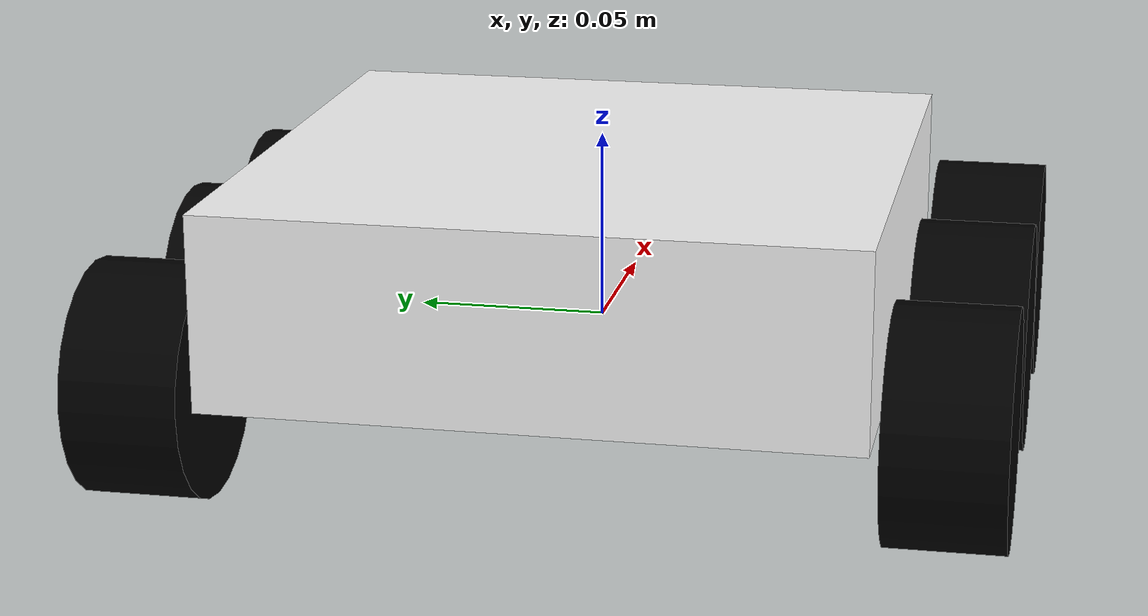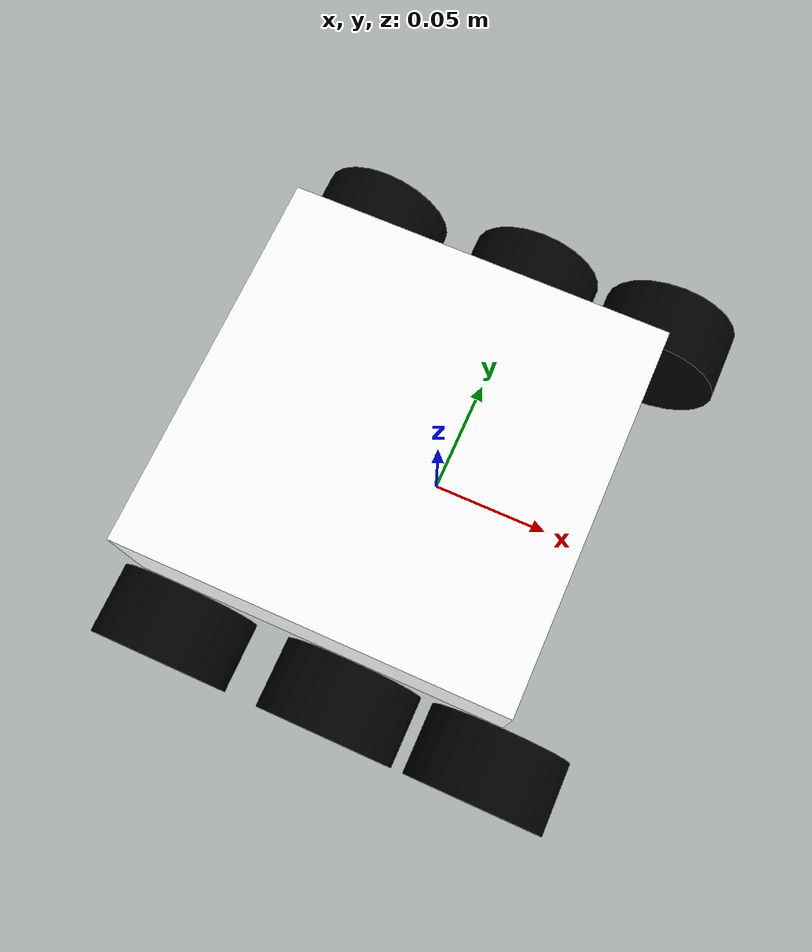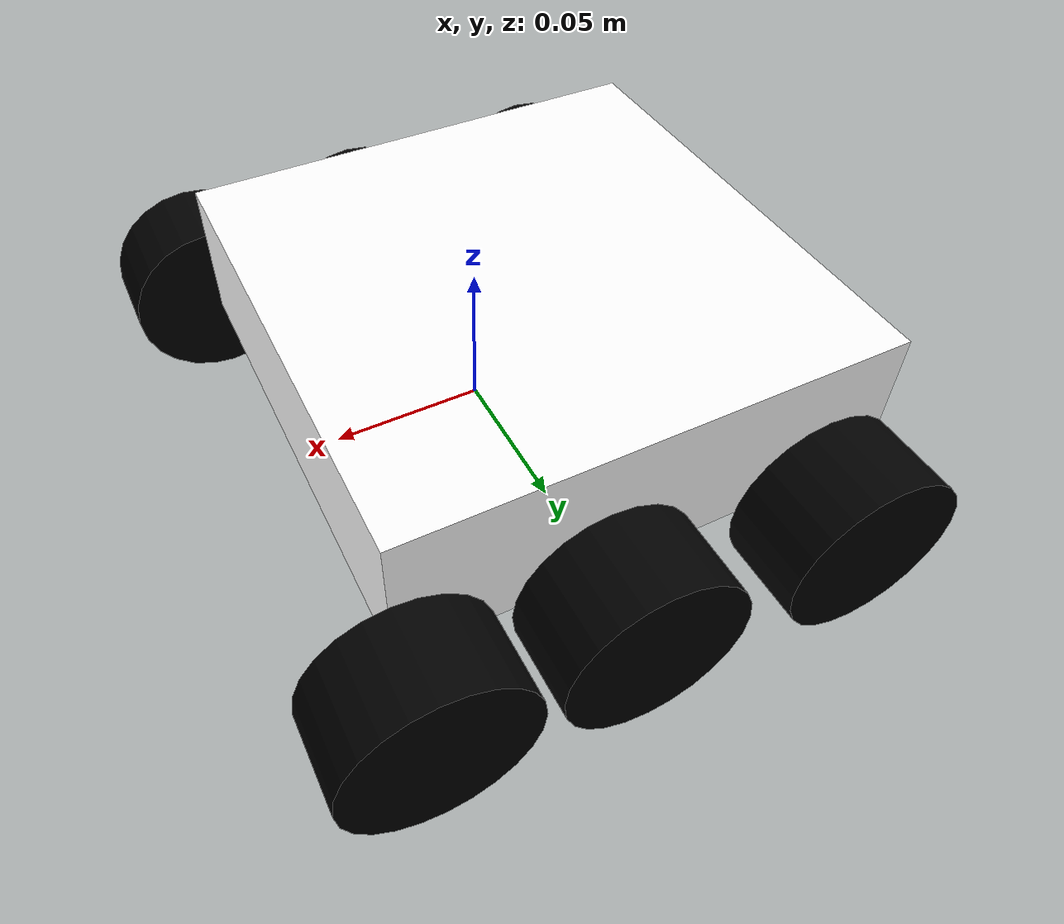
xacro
<?xml version="1.0"?>
<robot xmlns:xacro="http://www.ros.org/wiki/xacro"  >

    <xacro:include filename="inertial_macros.xacro"/>

<!--MATERIALS-->

    <material name="white">
        <color rgba="1 1 1 1" />
    </material>

    <material name="orange">
        <color rgba="1 0.3 0.1 1" />
    </material>

    <material name="blue">
        <color rgba="0.2 0.2 1 1" />
    </material>

    <material name="black">
        <color rgba="0 0 0 1" />
    </material>

<!--BASE LINK-->

    <link name="base_link">
    </link>

<!--CHASSIS LINK-->

    <joint name="chassis_joint" type="fixed">
        <parent link="base_link"/>
        <child link="chassis"/>
        <origin xyz="-0.1 0 0"/>
    </joint>

    <link name="chassis">
        <visual>
            <origin xyz="0.0825 0 0.025" rpy="0 0 0"/>
            <geometry>
                <box size="0.165 0.165 0.05"/>
            </geometry>
            <material name="white"/>
        </visual>
        <collision>
            <origin xyz="0.0825 0 0.025" rpy="0 0 0"/>
            <geometry>
                <box size="0.165 0.165 0.05"/>
            </geometry>
            <material name="white"/>
        </collision>
        <xacro:inertial_box mass="0.5" x="0.3" y="0.3" z="0.15">
            <origin xyz="0.0825 0 0.025" rpy="0 0 0"/>
        </xacro:inertial_box>
    </link>

    <gazebo reference="chassis">
        <material>Gazebo/White</material>
    </gazebo>

<!--BACK LEFT WHEEL LINK-->

    <joint name ="back_left_wheel_joint" type="continuous">
        <parent link="base_link"/>
        <child link="back_left_wheel"/>
        <origin xyz="0.065 0.100 0" rpy="-${pi/2} 0 0"/>
        <axis xyz="0 0 1"/>
    </joint>

    <link name="back_left_wheel">
        <visual>
            <geometry>
                <cylinder length="0.03" radius="0.03"/>
            </geometry>
            <material name="black"/>
        </visual>
        <collision>
            <geometry>
                <cylinder length="0.030" radius="0.030"/>
            </geometry>
            <material name="black"/>
        </collision>
        <xacro:inertial_cylinder mass="0.1" length="0.03" radius="0.03">
            <origin xyz="0 0 0" rpy="0 0 0"/>
        </xacro:inertial_cylinder>
    </link>

    <gazebo reference="back_left_wheel">
        <material>Gazebo/Black</material>
    </gazebo>

<!--BACK RIGHT WHEEL LINK-->

    <joint name ="back_right_wheel_joint" type="continuous">
        <parent link="base_link"/>
        <child link="back_right_wheel"/>
        <origin xyz="0.065 -0.100 0" rpy="${pi/2} 0 0"/>
        <axis xyz="0 0 -1"/>
    </joint>

    <link name="back_right_wheel">
        <visual>
            <geometry>
                <cylinder length="0.030" radius="0.030"/>
            </geometry>
            <material name ="black"/>
        </visual>
        <collision>
            <geometry>
                <cylinder length="0.030" radius="0.030"/>
            </geometry>
            <material name ="black"/>
        </collision>
        <xacro:inertial_cylinder mass="0.1" length="0.03" radius="0.03">
            <origin xyz="0 0 0" rpy="0 0 0"/>
        </xacro:inertial_cylinder>
    </link>

    <gazebo reference="back_right_wheel">
        <material>Gazebo/Black</material>
    </gazebo>

<!--FRONT LEFT WHEEL LINK-->

    <joint name ="front_left_wheel_joint" type="fixed">
        <parent link="base_link"/>
        <child link="front_left_wheel"/>
        <origin xyz="-0.075 0.100 0" rpy="-${pi/2} 0 0"/>
        <axis xyz="0 0 1"/>
    </joint>

    <link name="front_left_wheel">
        <visual>
            <geometry>
                <cylinder length="0.03" radius="0.03"/>
            </geometry>
            <material name="black"/>
        </visual>
        <collision>
            <geometry>
                <cylinder length="0.030" radius="0.030"/>
            </geometry>
            <material name="black"/>
        </collision>
        <xacro:inertial_cylinder mass="0.1" length="0.03" radius="0.03">
            <origin xyz="0 0 0" rpy="0 0 0"/>
        </xacro:inertial_cylinder>
    </link>

    <gazebo reference="front_left_wheel">
        <material>Gazebo/Black</material>
        <mu1 value="0.001"/>
        <mu2 value="0.001"/>
    </gazebo>

<!--FRONT RIGHT WHEEL LINK-->

    <joint name ="front_right_wheel_joint" type="fixed">
        <parent link="base_link"/>
        <child link="front_right_wheel"/>
        <origin xyz="-0.075 -0.100 0" rpy="${pi/2} 0 0"/>
        <axis xyz="0 0 -1"/>
    </joint>

    <link name="front_right_wheel">
        <visual>
            <geometry>
                <cylinder length="0.030" radius="0.030"/>
            </geometry>
            <material name ="black"/>
        </visual>
        <collision>
            <geometry>
                <cylinder length="0.030" radius="0.030"/>
            </geometry>
            <material name ="black"/>
        </collision>
        <xacro:inertial_cylinder mass="0.1" length="0.03" radius="0.03">
            <origin xyz="0 0 0" rpy="0 0 0"/>
        </xacro:inertial_cylinder>
    </link>

    <gazebo reference="front_right_wheel">
        <material>Gazebo/Black</material>
        <mu1 value="0.001"/>
        <mu2 value="0.001"/>
    </gazebo>

<!--MIDDLE LEFT WHEEL LINK-->

    <joint name ="middle_left_wheel_joint" type="fixed">
        <parent link="base_link"/>
        <child link="middle_left_wheel"/>
        <origin xyz="0 0.100 0" rpy="-${pi/2} 0 0"/>
        <axis xyz="0 0 1"/>
    </joint>

    <link name="middle_left_wheel">
        <visual>
            <geometry>
                <cylinder length="0.03" radius="0.03"/>
            </geometry>
            <material name="black"/>
        </visual>
        <collision>
            <geometry>
                <cylinder length="0.030" radius="0.030"/>
            </geometry>
            <material name="black"/>
        </collision>
        <xacro:inertial_cylinder mass="0.1" length="0.03" radius="0.03">
            <origin xyz="0 0 0" rpy="0 0 0"/>
        </xacro:inertial_cylinder>
    </link>

    <gazebo reference="middle_left_wheel">
        <material>Gazebo/Black</material>
        <mu1 value="0.001"/>
        <mu2 value="0.001"/>
    </gazebo>

<!--MIDDLE RIGHT WHEEL LINK-->

    <joint name ="middle_right_wheel_joint" type="fixed">
        <parent link="base_link"/>
        <child link="middle_right_wheel"/>
        <origin xyz="0 -0.100 0" rpy="${pi/2} 0 0"/>
        <axis xyz="0 0 -1"/>
    </joint>

    <link name="middle_right_wheel">
        <visual>
            <geometry>
                <cylinder length="0.030" radius="0.030"/>
            </geometry>
            <material name ="black"/>
        </visual>
        <collision>
            <geometry>
                <cylinder length="0.030" radius="0.030"/>
            </geometry>
            <material name ="black"/>
        </collision>
        <xacro:inertial_cylinder mass="0.1" length="0.03" radius="0.03">
            <origin xyz="0 0 0" rpy="0 0 0"/>
        </xacro:inertial_cylinder>
    </link>

    <gazebo reference="middle_right_wheel">
        <material>Gazebo/Black</material>
        <mu1 value="0.001"/>
        <mu2 value="0.001"/>
    </gazebo>

</robot>
